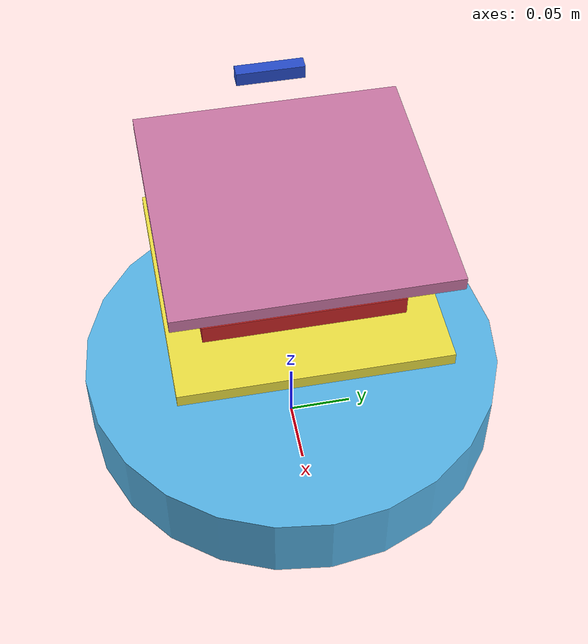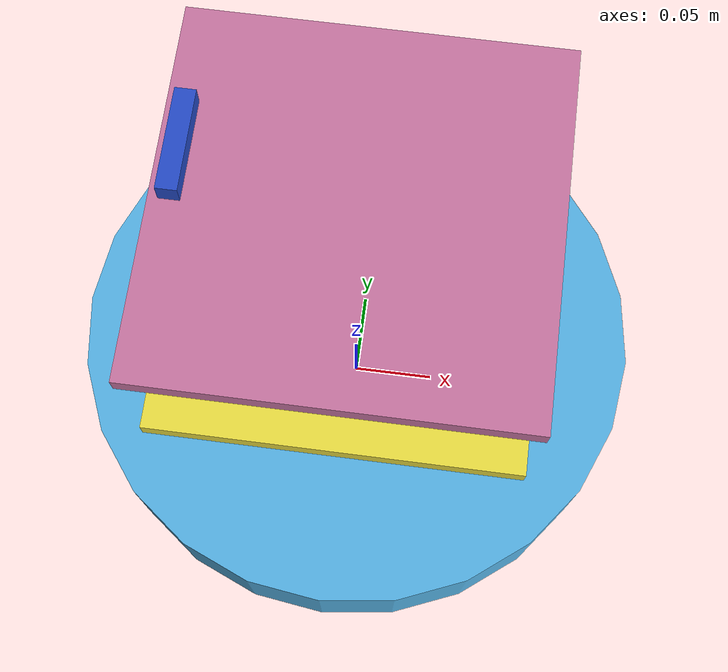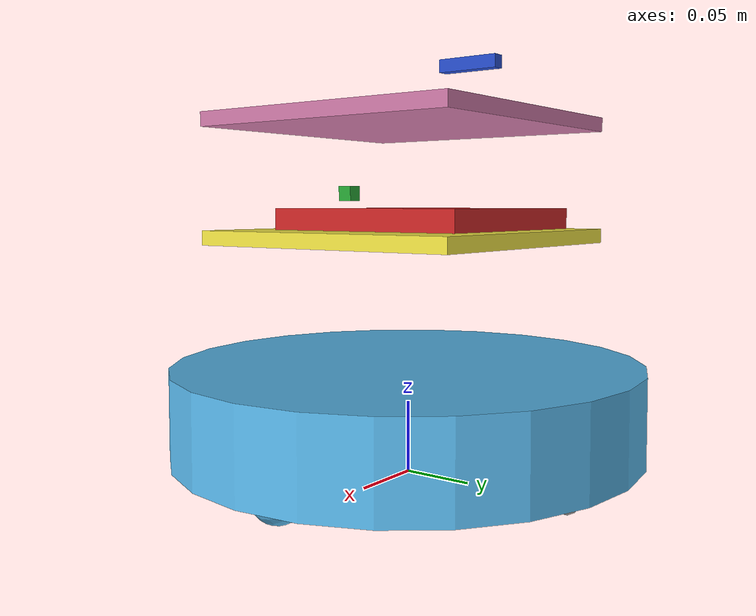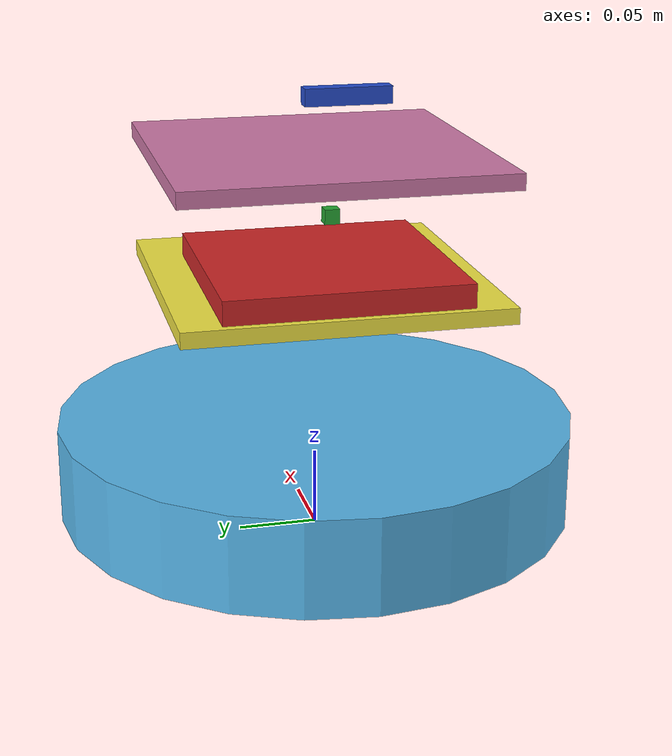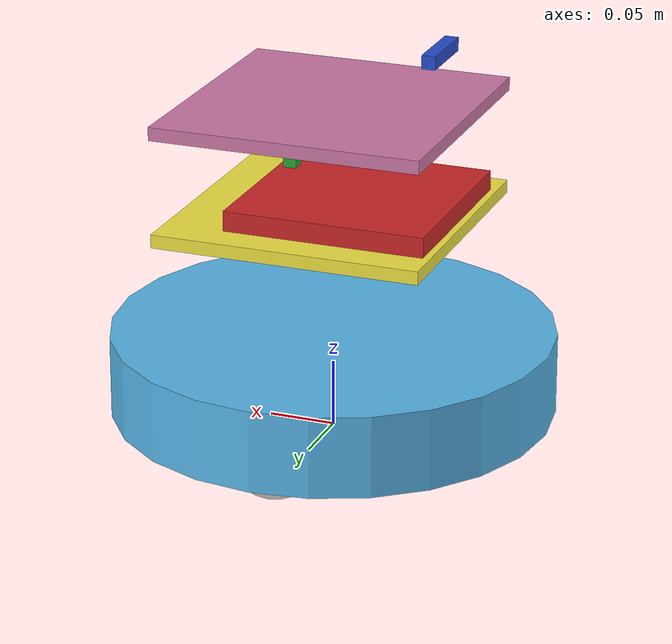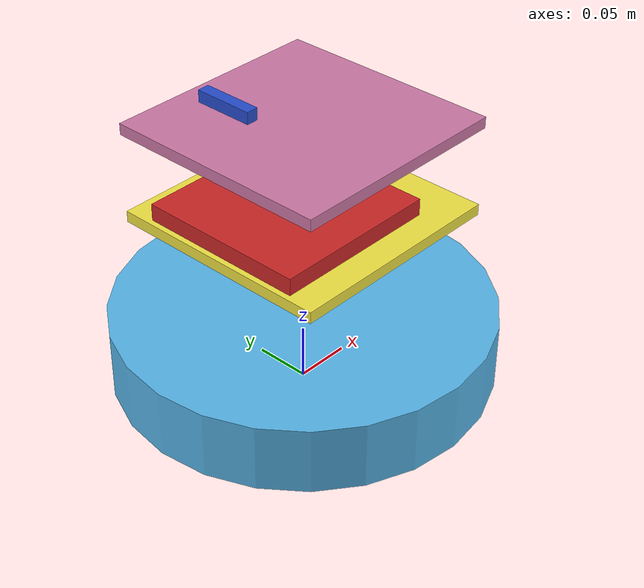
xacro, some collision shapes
<?xml version="1.0" ?>
<robot name="create_2" xmlns:xacro="http://ros.org/wiki/xacro">
  <xacro:include filename="$(find rover_platform)/urdf/create_base.urdf.xacro" />
  <xacro:include filename="$(find rover_platform)/urdf/create_2_gazebo.urdf.xacro" />

  <xacro:create_base wheel_separation="0.235" base_diameter="0.3485">
    <mesh filename="package://rover_platform/meshes/create_2.dae" />
  </xacro:create_base>
</robot>

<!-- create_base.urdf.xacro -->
<robot xmlns:xacro="http://ros.org/wiki/xacro">
  <xacro:property name="PI" value="3.1415926535897931" />

  <xacro:macro name="create_wheel" params="prefix y_offset wheel_radius wheel_width">
    <link name="${prefix}_wheel_link">
    <inertial>
      <origin xyz="0 0 0" />
      <mass value="0.01" />
      <inertia ixx="0.001" ixy="0.0" ixz="0.0" iyy="0.001" iyz="0.0" izz="0.001" />
    </inertial>

    <visual>
      <origin xyz="0 0 0" rpy="0 ${PI/2} ${PI/2}" />
      <geometry>
        <cylinder radius="${wheel_radius}" length="${wheel_width}" />
      </geometry>
    </visual>

    <collision>
      <origin xyz="0 0 0" rpy="0 ${PI/2} ${PI/2}" />
      <geometry>
        <cylinder radius="${wheel_radius}" length="${wheel_width}" />
      </geometry>
    </collision>
    </link>

   <joint name="${prefix}_wheel_joint" type="continuous">
      <origin xyz="0 ${y_offset} 0.015" rpy="0 0 0" />
      <parent link="base_link" />
      <child link="${prefix}_wheel_link" />
      <axis xyz="0 1 0" />
    </joint>
  </xacro:macro>

  <xacro:macro name="create_base" params="diffdrive_update_rate:=40 wheel_separation wheel_radius:=0.036 wheel_width:=0.024 wheel_torque:=1.0 wheel_accel:=1.8 mass_kg:=3.5 base_diameter *mesh">
    <xacro:include filename="$(find rover_platform)/urdf/create_base_gazebo.urdf.xacro" />

    <link name="base_footprint">
    <visual>
      <origin xyz="0 0 0" rpy="0 0 0" />
      <geometry>
        <box size="0.001 0.001 0.001" />
      </geometry>
      <material name="Green" />
    </visual>

    <collision>
      <origin xyz="0 0 0.017" rpy="0 0 0" />
      <geometry>
        <box size="0.001 0.001 0.001" />
      </geometry>
    </collision>
    </link>

    <link name="base_link">
    <inertial>
      <mass value="2" />
      <origin xyz="0 0 0.0" />
      <inertia ixx="0.01" ixy="0.0" ixz="0.0" iyy="0.01" iyz="0.0" izz="0.5" />
    </inertial>

    <visual>
      <origin xyz=" 0 0 0.0308" rpy="0 0 0" />
      <geometry>
        <xacro:insert_block name="mesh" />
      </geometry>
    </visual>

    <collision>
      <origin xyz="0.0 0.0 0.0308" rpy="0 0 0" />
      <geometry>
        <cylinder length="0.0611632" radius="0.16495" />
      </geometry>
    </collision>
    </link>

    <link name="wall_sensor_link">
    <inertial>
      <mass value="0.01" />
      <origin xyz="0 0 0" />
      <inertia ixx="0.001" ixy="0.0" ixz="0.0" iyy="0.001" iyz="0.0" izz="0.001" />
    </inertial>
    </link>

    <link name="left_cliff_sensor_link">
    <inertial>
      <mass value="0.01" />
      <origin xyz="0 0 0" />
      <inertia ixx="0.001" ixy="0.0" ixz="0.0" iyy="0.001" iyz="0.0" izz="0.001" />
    </inertial>
    </link>

    <link name="right_cliff_sensor_link">
    <inertial>
      <mass value="0.01" />
      <origin xyz="0 0 0" />
      <inertia ixx="0.001" ixy="0.0" ixz="0.0" iyy="0.001" iyz="0.0" izz="0.001" />
    </inertial>
    </link>

    <link name="leftfront_cliff_sensor_link">
    <inertial>
      <mass value="0.01" />
      <origin xyz="0 0 0" />
      <inertia ixx="1.0" ixy="0.0" ixz="0.0" iyy="0.01" iyz="0.0" izz="0.01" />
    </inertial>
    </link>

    <link name="rightfront_cliff_sensor_link">
    <inertial>
      <mass value="0.01" />
      <origin xyz="0 0 0" />
      <inertia ixx="0.001" ixy="0.0" ixz="0.0" iyy="0.001" iyz="0.0" izz="0.001" />
    </inertial>
    </link>

    <joint name="base_footprint_joint" type="fixed">
      <origin xyz="0 0 0.017" rpy="0 0 0" />
      <parent link="base_footprint" />
      <child link="base_link" />
    </joint>

    <joint name="base_wall_sensor_joint" type="fixed">
      <origin xyz="0.09 -0.120 0.042" rpy="0 0 -1.0" />
      <parent link="base_link" />
      <child link="wall_sensor_link" />
    </joint>

    <joint name="base_left_cliff_sensor_joint" type="fixed">
      <origin xyz="0.07 0.14 0.01" rpy="0 ${PI/2} 0" />
      <parent link="base_link" />
      <child link="left_cliff_sensor_link" />
    </joint>

    <joint name="base_right_cliff_sensor_joint" type="fixed">
      <origin xyz="0.07 -0.14 0.01" rpy="0 ${PI/2} 0" />
      <parent link="base_link" />
      <child link="right_cliff_sensor_link" />
    </joint>

    <joint name="base_leftfront_cliff_sensor_joint" type="fixed">
      <origin xyz="0.15 0.04 0.01" rpy="0 ${PI/2} 0" />
      <parent link="base_link" />
      <child link="leftfront_cliff_sensor_link" />
    </joint>

    <joint name="base_rightfront_cliff_sensor_joint" type="fixed">
      <origin xyz="0.15 -0.04 0.01" rpy="0 ${PI/2} 0" />
      <parent link="base_link" />
      <child link="rightfront_cliff_sensor_link" />
    </joint>

    <xacro:create_wheel prefix="left" y_offset="${wheel_separation / 2}" wheel_radius="${wheel_radius}" wheel_width="${wheel_width}"/>
    <xacro:create_wheel prefix="right" y_offset="${wheel_separation / -2}" wheel_radius="${wheel_radius}" wheel_width="${wheel_width}"/>

    <link name="front_wheel_link">
    <inertial>
      <origin xyz="0 0 0" />
      <mass value="0.01" />
      <inertia ixx="0.001" ixy="0.0" ixz="0.0" iyy="0.001" iyz="0.0" izz="0.001" />
    </inertial>

    <visual>
      <origin xyz="0 0 0" rpy="0 ${PI/2} ${PI/2}" />
      <geometry>
        <sphere radius="0.018" />
      </geometry>
    </visual>

    <collision>
      <origin xyz="0 0 0" rpy="0 ${PI/2} ${PI/2}" />
      <geometry>
        <sphere radius="0.018" />
      </geometry>
    </collision>
    </link>

    <!-- fixed because there's no transmission -->
    <joint name="front_castor_joint" type="fixed">
      <origin xyz="0.13 0 0.0" rpy="0 0 0" />
      <parent link="base_link" />
      <child link="front_wheel_link" />
      <axis xyz="0 1 0" />
    </joint>

    <joint name="gyro_joint" type="fixed">
      <axis xyz="0 1 0" />
      <origin xyz="0 0 0.04" rpy="0 0 0" />
      <parent link="base_link" />
      <child link="gyro_link" />
    </joint>

    <link name="gyro_link">
    <inertial>
      <mass value="0.001" />
      <origin xyz="0 0 0" rpy="0 0 0" />
      <inertia ixx="0.0001" ixy="0" ixz="0" iyy="0.000001" iyz="0" izz="0.0001" />
    </inertial>
    </link>

    <!-- Sensor Platform -->
    <link name="jetson_platform">
      <pose>0 0 0 0 0 0</pose>
      <material name="Gazebo/Green" />
      <inertial>
        <origin xyz="0 0 0" />
        <mass value="0.01" />
        <inertia ixx="0.001" ixy="0.0" ixz="0.0" iyy="0.001" iyz="0.0" izz="0.001" />
      </inertial>

      <visual>
        <origin xyz="0 0 0" rpy="0 0 0" />
        <geometry>
          <box size="0.2 0.2 0.01" />
        </geometry>
      </visual>

      <collision>
        <origin xyz="0 0 0" rpy="0 0 0" />
        <geometry>
          <box size="0.2 0.2 0.01" />
        </geometry>
      </collision>

    </link>

    <link name="jetson">
      <pose>0 0 0 0 0 0</pose>
      <inertial>
        <origin xyz="0 0 0" />
        <mass value="0.01" />
        <inertia ixx="0.001" ixy="0.0" ixz="0.0" iyy="0.001" iyz="0.0" izz="0.001" />
      </inertial>

      <visual>
        <origin xyz="0 0 0" rpy="0 0 0" />
        <geometry>
          <box size="0.15 0.15 0.02" />
        </geometry>
      </visual>

      <collision>
        <origin xyz="0 0 0" rpy="0 0 0" />
        <geometry>
          <box size="0.15 0.15 0.02" />
        </geometry>
      </collision>
    </link>

    <link name="camera_link">
      <pose>0 0 0 0 0 0</pose>
      <inertial>
         <mass value="0.01"/>
         <origin xyz="0 0 0" rpy="0 0 0"/>
         <inertia
     ixx="1e-6" ixy="0" ixz="0"
     iyy="1e-6" iyz="0"
     izz="1e-6"
    />
      </inertial>

      <collision>
         <origin xyz="0 0 0" rpy="0 0 0"/>
         <geometry>
            <box size="0.01 0.01 0.01" />
         </geometry>
      </collision>

      <visual>
         <origin xyz="0 0 0" rpy="0 0 0"/>
         <geometry>
            <box size="0.01 0.01 0.01" />
         </geometry>
      </visual>

    </link>

    <link name="payload_platform">
      <pose>0 0 0 0 0 0</pose>
      <material name="Gazebo/Green" />
      <inertial>
        <origin xyz="0 0 0" />
        <mass value="0.01" />
        <inertia ixx="0.001" ixy="0.0" ixz="0.0" iyy="0.001" iyz="0.0" izz="0.001" />
      </inertial>

      <visual>
        <origin xyz="0 0 0" rpy="0 0 0" />
        <geometry>
          <box size="0.2 0.2 0.01" />
        </geometry>
      </visual>

      <collision>
        <origin xyz="0 0 0" rpy="0 0 0" />
        <geometry>
          <box size="0.2 0.2 0.01" />
        </geometry>
      </collision>
    </link>

    <link name="depth_camera">
      <pose>0 0 0 0 0 0</pose>
      <inertial>
         <mass value="0.01"/>
         <origin xyz="0 0 0" rpy="0 0 0"/>
         <inertia
     ixx="1e-6" ixy="0" ixz="0"
     iyy="1e-6" iyz="0"
     izz="1e-6"
    />
      </inertial>

      <collision>
         <origin xyz="0 0 0" rpy="0 0 0"/>
         <geometry>
            <box size="0.01 0.05 0.01" />
         </geometry>
      </collision>

      <visual>
         <origin xyz="0 0 0" rpy="0 0 0"/>
         <geometry>
            <box size="0.01 0.05 0.01" />
         </geometry>
      </visual>
    </link>

    <joint type="fixed" name="jetson_platform_joint">
      <axis xyz="0 1 0" />
      <origin xyz="0.0 0 0.15" rpy="0 0 0" />
      <parent link="base_link" />
      <child link="jetson_platform" />
	  </joint>

    <joint type="fixed" name="jetson_joint">
      <axis xyz="0 1 0" />
      <origin xyz="-0.02 0 0.01" rpy="0 0 0" />
      <parent link="jetson_platform" />
      <child link="jetson" />
    </joint>

    <joint type="fixed" name="camera_joint">
      <axis xyz="0 1 0" />
      <origin xyz="0.06 -0.02 0.02" rpy="0 0 0" />
      <parent link="jetson" />
      <child link="camera_link" />
	  </joint>

    <joint type="fixed" name="payload_platform_joint">
      <axis xyz="0 1 0" />
      <origin xyz="0.0 0 0.08" rpy="0 0 0" />
      <parent link="jetson_platform" />
      <child link="payload_platform" />
    </joint>

    <joint type="fixed" name="depth_camera_joint">
      <axis xyz="0 1 0" />
      <origin xyz="-0.08 0.0 0.05" rpy="0 0 0" />
      <parent link="payload_platform" />
      <child link="depth_camera" />
    </joint>

    <link name="depth_camera_frame">
 		 <pose>0 0 0 0 0 0</pose>
 	  </link>

    <joint type="fixed" name="camera_frame_joint">
			<origin xyz="0.0 0 0.0" rpy="-1.57 0 -1.57"/>
			<child link="depth_camera_frame"/>
			<parent link="depth_camera"/>
			<axis xyz="1 0 0" rpy="0 0 0"/>
		</joint>

    <!-- Simulation sensors -->
    <xacro:sim_create_base/>
    <xacro:sim_create_wall_sensor/>
    <xacro:sim_create_cliff_sensors/>
    <xacro:sim_imu/>
  </xacro:macro>
</robot>
